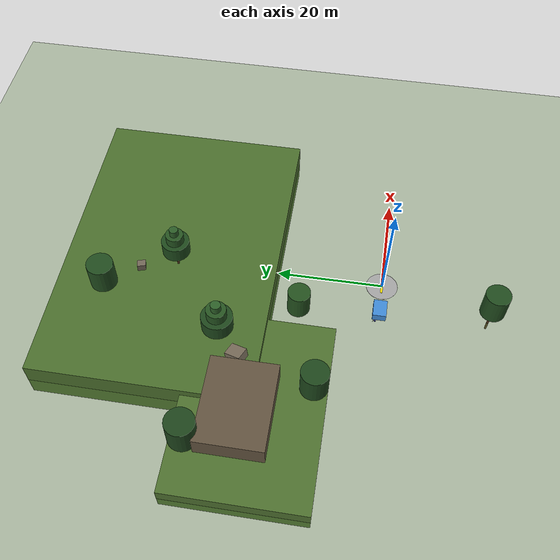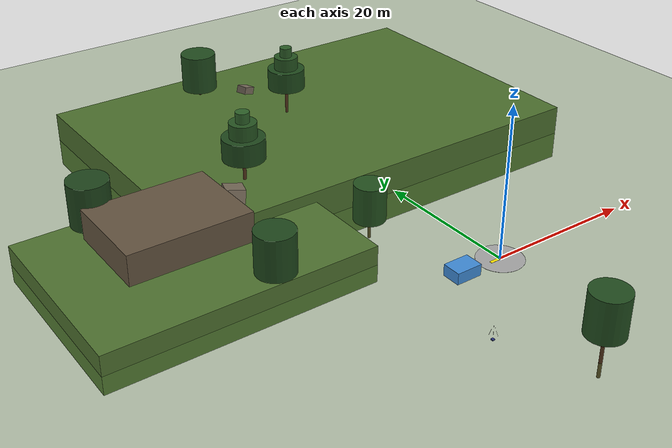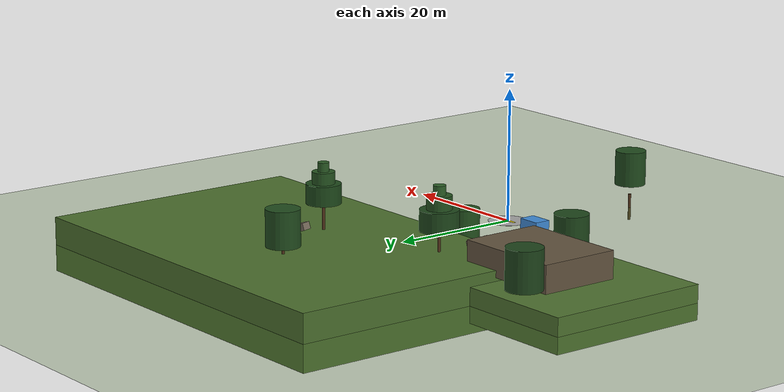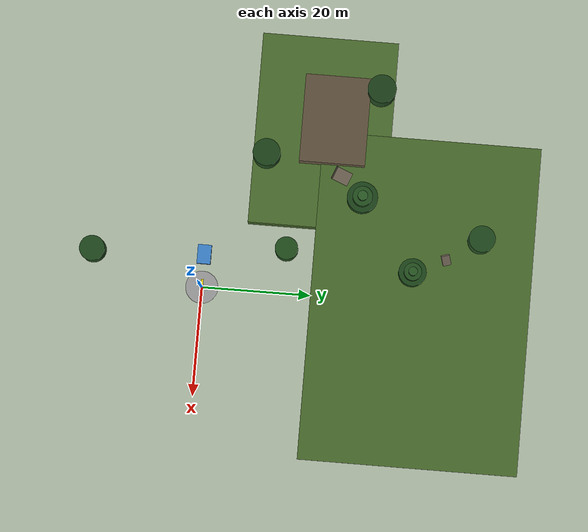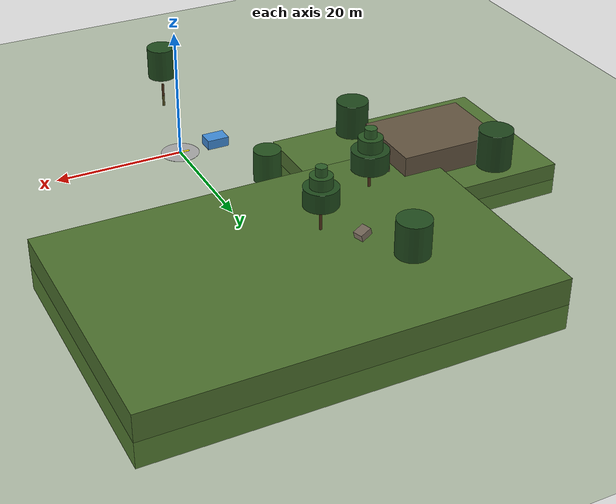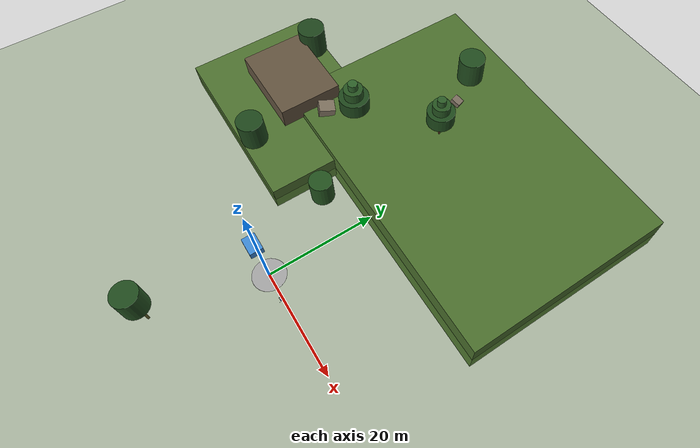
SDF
<sdf version="1.9">
 <world name="sar_hilly_terrain">
  <model name="ground_plane">
   <static>true</static>
   <link name="link">
    <collision name="col">
     <geometry><plane><normal>0 0 1</normal><size>500 500</size></plane></geometry>
    </collision>
    <visual name="vis">
     <geometry><plane><normal>0 0 1</normal><size>500 500</size></plane></geometry>
     <material>
      <ambient>0.28 0.42 0.18 1</ambient>
      <diffuse>0.32 0.48 0.20 1</diffuse>
      <specular>0.05 0.07 0.03 1</specular>
     </material>
    </visual>
   </link>
  </model>
  <model name="hill_1">
   <static>true</static>
   <pose>0 40 0 0 0 0</pose>
   <link name="link">
    <collision name="col"><geometry><box><size>60 40 8</size></box></geometry></collision>
    <visual name="vis">
     <geometry><box><size>60 40 8</size></box></geometry>
     <material><ambient>0.26 0.38 0.16 1</ambient><diffuse>0.30 0.44 0.18 1</diffuse></material>
    </visual>
   </link>
  </model>
  <model name="hill_3">
   <static>true</static>
   <pose>-30 20 0 0 0 0</pose>
   <link name="link">
    <collision name="col"><geometry><box><size>35 25 5</size></box></geometry></collision>
    <visual name="vis">
     <geometry><box><size>35 25 5</size></box></geometry>
     <material><ambient>0.27 0.39 0.17 1</ambient><diffuse>0.31 0.45 0.19 1</diffuse></material>
    </visual>
   </link>
  </model>
  <model name="hill_3_peak">
   <static>true</static>
   <pose>-32 22 5 0 0 0</pose>
   <link name="link">
    <collision name="col"><geometry><box><size>16 12 4</size></box></geometry></collision>
    <visual name="vis">
     <geometry><box><size>16 12 4</size></box></geometry>
     <material><ambient>0.35 0.29 0.21 1</ambient><diffuse>0.39 0.33 0.25 1</diffuse></material>
    </visual>
   </link>
  </model>
  <model name="tree_02">
   <static>true</static>
   <pose>-5 38 8 0 0 0</pose>
   <link name="trunk">
    <visual name="v">
     <geometry><cylinder><radius>0.20</radius><length>4.0</length></cylinder></geometry>
     <material><ambient>0.28 0.18 0.08 1</ambient><diffuse>0.32 0.20 0.10 1</diffuse></material>
    </visual>
    <collision name="c">
     <geometry><cylinder><radius>0.20</radius><length>4.0</length></cylinder></geometry>
    </collision>
   </link>
  </model>
  <model name="tree_02_c1">
   <static>true</static>
   <pose>-5 38 11.2 0 0 0</pose>
   <link name="l">
    <visual name="v">
     <geometry><cylinder><radius>2.5</radius><length>2.8</length></cylinder></geometry>
     <material><ambient>0.10 0.25 0.09 1</ambient><diffuse>0.12 0.29 0.11 1</diffuse></material>
    </visual>
   </link>
  </model>
  <model name="tree_02_c2">
   <static>true</static>
   <pose>-5 38 13.2 0 0 0</pose>
   <link name="l">
    <visual name="v">
     <geometry><cylinder><radius>1.6</radius><length>2.2</length></cylinder></geometry>
     <material><ambient>0.13 0.29 0.11 1</ambient><diffuse>0.15 0.33 0.13 1</diffuse></material>
    </visual>
   </link>
  </model>
  <model name="tree_02_c3">
   <static>true</static>
   <pose>-5 38 14.8 0 0 0</pose>
   <link name="l">
    <visual name="v">
     <geometry><cylinder><radius>0.8</radius><length>1.6</length></cylinder></geometry>
     <material><ambient>0.15 0.31 0.13 1</ambient><diffuse>0.17 0.36 0.15 1</diffuse></material>
    </visual>
   </link>
  </model>
  <model name="tree_04">
   <static>true</static>
   <pose>-18 28 5 0 0 0</pose>
   <link name="trunk">
    <visual name="v">
     <geometry><cylinder><radius>0.22</radius><length>4.5</length></cylinder></geometry>
     <material><ambient>0.28 0.18 0.08 1</ambient><diffuse>0.32 0.20 0.10 1</diffuse></material>
    </visual>
    <collision name="c">
     <geometry><cylinder><radius>0.22</radius><length>4.5</length></cylinder></geometry>
    </collision>
   </link>
  </model>
  <model name="tree_04_c1">
   <static>true</static>
   <pose>-18 28 8.5 0 0 0</pose>
   <link name="l">
    <visual name="v">
     <geometry><cylinder><radius>2.8</radius><length>3.0</length></cylinder></geometry>
     <material><ambient>0.10 0.24 0.09 1</ambient><diffuse>0.12 0.28 0.11 1</diffuse></material>
    </visual>
   </link>
  </model>
  <model name="tree_04_c2">
   <static>true</static>
   <pose>-18 28 10.8 0 0 0</pose>
   <link name="l">
    <visual name="v">
     <geometry><cylinder><radius>1.8</radius><length>2.4</length></cylinder></geometry>
     <material><ambient>0.13 0.28 0.11 1</ambient><diffuse>0.15 0.33 0.13 1</diffuse></material>
    </visual>
   </link>
  </model>
  <model name="tree_04_c3">
   <static>true</static>
   <pose>-18 28 12.5 0 0 0</pose>
   <link name="l">
    <visual name="v">
     <geometry><cylinder><radius>0.9</radius><length>1.8</length></cylinder></geometry>
     <material><ambient>0.16 0.32 0.14 1</ambient><diffuse>0.18 0.38 0.16 1</diffuse></material>
    </visual>
   </link>
  </model>
  <model name="tree_06">
   <static>true</static>
   <pose>-8 15 0 0 0 0</pose>
   <link name="trunk">
    <visual name="v">
     <geometry><cylinder><radius>0.18</radius><length>3.5</length></cylinder></geometry>
     <material><ambient>0.28 0.18 0.08 1</ambient><diffuse>0.32 0.20 0.10 1</diffuse></material>
    </visual>
   </link>
  </model>
  <model name="tree_06_can">
   <static>true</static>
   <pose>-8 15 3.5 0 0 0</pose>
   <link name="l">
    <visual name="v">
     <geometry><cylinder><radius>2.1</radius><length>5.0</length></cylinder></geometry>
     <material><ambient>0.12 0.27 0.10 1</ambient><diffuse>0.14 0.32 0.12 1</diffuse></material>
    </visual>
   </link>
  </model>
  <model name="tree_08">
   <static>true</static>
   <pose>-25 10 0 0 0 0</pose>
   <link name="trunk">
    <visual name="v">
     <geometry><cylinder><radius>0.21</radius><length>4.0</length></cylinder></geometry>
     <material><ambient>0.28 0.18 0.08 1</ambient><diffuse>0.32 0.20 0.10 1</diffuse></material>
    </visual>
   </link>
  </model>
  <model name="tree_08_can">
   <static>true</static>
   <pose>-25 10 5.2 0 0 0</pose>
   <link name="l">
    <visual name="v">
     <geometry><cylinder><radius>2.5</radius><length>5.5</length></cylinder></geometry>
     <material><ambient>0.10 0.24 0.09 1</ambient><diffuse>0.12 0.28 0.11 1</diffuse></material>
    </visual>
   </link>
  </model>
  <model name="tree_10">
   <static>true</static>
   <pose>-12 50 8 0 0 0</pose>
   <link name="trunk">
    <visual name="v">
     <geometry><cylinder><radius>0.20</radius><length>3.8</length></cylinder></geometry>
     <material><ambient>0.28 0.18 0.08 1</ambient><diffuse>0.32 0.20 0.10 1</diffuse></material>
    </visual>
   </link>
  </model>
  <model name="tree_10_can">
   <static>true</static>
   <pose>-12 50 9.8 0 0 0</pose>
   <link name="l">
    <visual name="v">
     <geometry><cylinder><radius>2.4</radius><length>5.2</length></cylinder></geometry>
     <material><ambient>0.11 0.26 0.10 1</ambient><diffuse>0.13 0.30 0.12 1</diffuse></material>
    </visual>
   </link>
  </model>
  <model name="tree_12">
   <static>true</static>
   <pose>-38 30 0 0 0 0</pose>
   <link name="t">
    <visual name="v">
     <geometry><cylinder><radius>0.22</radius><length>4.2</length></cylinder></geometry>
     <material><ambient>0.28 0.18 0.08 1</ambient><diffuse>0.32 0.20 0.10 1</diffuse></material>
    </visual>
   </link>
  </model>
  <model name="tree_12_can">
   <static>true</static>
   <pose>-38 30 6.5 0 0 0</pose>
   <link name="l">
    <visual name="v">
     <geometry><cylinder><radius>2.6</radius><length>5.8</length></cylinder></geometry>
     <material><ambient>0.10 0.23 0.09 1</ambient><diffuse>0.12 0.27 0.11 1</diffuse></material>
    </visual>
   </link>
  </model>
  <model name="tree_14">
   <static>true</static>
   <pose>-5 -20 0 0 0 0</pose>
   <link name="t">
    <visual name="v">
     <geometry><cylinder><radius>0.20</radius><length>4.0</length></cylinder></geometry>
     <material><ambient>0.28 0.18 0.08 1</ambient><diffuse>0.32 0.20 0.10 1</diffuse></material>
    </visual>
   </link>
  </model>
  <model name="tree_14_can">
   <static>true</static>
   <pose>-5 -20 6.2 0 0 0</pose>
   <link name="l">
    <visual name="v">
     <geometry><cylinder><radius>2.3</radius><length>5.2</length></cylinder></geometry>
     <material><ambient>0.11 0.26 0.10 1</ambient><diffuse>0.13 0.30 0.12 1</diffuse></material>
    </visual>
   </link>
  </model>
  <model name="rock_2">
   <static>true</static>
   <pose>-22 24 5 0.1 0.2 1.2</pose>
   <link name="l">
    <visual name="v">
     <geometry><box><size>3.0 2.5 1.8</size></box></geometry>
     <material><ambient>0.42 0.38 0.32 1</ambient><diffuse>0.48 0.43 0.36 1</diffuse></material>
    </visual>
    <collision name="c"><geometry><box><size>3.0 2.5 1.8</size></box></geometry></collision>
   </link>
  </model>
  <model name="rock_4">
   <static>true</static>
   <pose>-8 44 8 0.0 0.3 0.3</pose>
   <link name="l">
    <visual name="v">
     <geometry><box><size>1.8 1.5 1.0</size></box></geometry>
     <material><ambient>0.43 0.38 0.33 1</ambient><diffuse>0.47 0.42 0.36 1</diffuse></material>
    </visual>
    <collision name="c"><geometry><box><size>1.8 1.5 1.0</size></box></geometry></collision>
   </link>
  </model>
  <model name="survivor_3_body">
   <static>true</static>
   <pose>-28 22 5.45 0 0 0</pose>
   <link name="link">
    <visual name="torso">
     <geometry><cylinder><radius>0.22</radius><length>0.9</length></cylinder></geometry>
     <material><ambient>1.0 0.35 0.0 1</ambient><diffuse>1.0 0.40 0.0 1</diffuse></material>
    </visual>
    <collision name="c">
     <geometry><cylinder><radius>0.22</radius><length>0.9</length></cylinder></geometry>
    </collision>
   </link>
  </model>
  <model name="survivor_3_tarp">
   <static>true</static>
   <pose>-27.5 21 5.02 0 0 0.5</pose>
   <link name="link">
    <visual name="vis">
     <geometry><box><size>2.0 1.2 0.04</size></box></geometry>
     <material><ambient>1.0 0.20 0.0 1</ambient><diffuse>1.0 0.25 0.0 1</diffuse></material>
    </visual>
   </link>
  </model>
  <model name="survivor_3_signal">
   <static>true</static>
   <pose>-30 23 5.01 0 0 0.2</pose>
   <link name="link">
    <visual name="vis">
     <geometry><box><size>2.5 0.8 0.02</size></box></geometry>
     <material><ambient>1.0 1.0 0.0 1</ambient><diffuse>1.0 1.0 0.0 1</diffuse></material>
    </visual>
   </link>
  </model>
  <model name="base_camp_pad">
   <static>true</static>
   <pose>0 0 0.01 0 0 0</pose>
   <link name="link">
    <visual name="vis">
     <geometry><cylinder><radius>3.0</radius><length>0.02</length></cylinder></geometry>
     <material><ambient>0.6 0.6 0.6 1</ambient><diffuse>0.65 0.65 0.65 1</diffuse></material>
    </visual>
   </link>
  </model>
  <model name="base_camp_H">
   <static>true</static>
   <pose>0 0 0.03 0 0 0</pose>
   <link name="link">
    <visual name="vis">
     <geometry><box><size>3.0 0.4 0.02</size></box></geometry>
     <material><ambient>1.0 0.9 0.0 1</ambient><diffuse>1.0 0.9 0.0 1</diffuse></material>
    </visual>
   </link>
  </model>
  <model name="base_camp_tent">
   <static>true</static>
   <pose>-6 0 0.75 0 0 0</pose>
   <link name="link">
    <visual name="vis">
     <geometry><box><size>3.5 2.5 1.5</size></box></geometry>
     <material><ambient>0.2 0.5 0.8 1</ambient><diffuse>0.25 0.55 0.85 1</diffuse></material>
    </visual>
    <collision name="c"><geometry><box><size>3.5 2.5 1.5</size></box></geometry></collision>
   </link>
  </model>
  <model name="parachute">
   <pose>0 0 -10 0 0 0</pose>
   <static>false</static>
   <link name="canopy">
    <inertial>
     <mass>0.15</mass>
     <inertia><ixx>0.03</ixx><iyy>0.03</iyy><izz>0.03</izz><ixy>0</ixy><ixz>0</ixz><iyz>0</iyz></inertia>
    </inertial>
    <visual name="dome">
     <geometry><sphere><radius>1.1</radius></sphere></geometry>
     <material><ambient>1.0 0.38 0.0 0.85</ambient><diffuse>1.0 0.38 0.0 0.85</diffuse></material>
    </visual>
    <collision name="dome_col"><geometry><sphere><radius>1.1</radius></sphere></geometry></collision>
    <visual name="stripe_1">
     <pose>0.5 0 -0.3 0 0.4 0</pose>
     <geometry><cylinder><radius>0.12</radius><length>1.8</length></cylinder></geometry>
     <material><ambient>1.0 1.0 1.0 0.7</ambient><diffuse>1.0 1.0 1.0 0.7</diffuse></material>
    </visual>
    <visual name="stripe_2">
     <pose>-0.5 0 -0.3 0 -0.4 0</pose>
     <geometry><cylinder><radius>0.12</radius><length>1.8</length></cylinder></geometry>
     <material><ambient>1.0 1.0 1.0 0.7</ambient><diffuse>1.0 1.0 1.0 0.7</diffuse></material>
    </visual>
    <visual name="stripe_3">
     <pose>0 0.5 -0.3 0.4 0 0</pose>
     <geometry><cylinder><radius>0.12</radius><length>1.8</length></cylinder></geometry>
     <material><ambient>1.0 1.0 1.0 0.7</ambient><diffuse>1.0 1.0 1.0 0.7</diffuse></material>
    </visual>
    <visual name="line_1">
     <pose>0.30 0.30 -0.85 0 0.32 0.785</pose>
     <geometry><cylinder><radius>0.007</radius><length>1.7</length></cylinder></geometry>
     <material><ambient>0.9 0.9 0.9 1</ambient><diffuse>0.9 0.9 0.9 1</diffuse></material>
    </visual>
    <visual name="line_2">
     <pose>-0.30 0.30 -0.85 0 -0.32 2.356</pose>
     <geometry><cylinder><radius>0.007</radius><length>1.7</length></cylinder></geometry>
     <material><ambient>0.9 0.9 0.9 1</ambient><diffuse>0.9 0.9 0.9 1</diffuse></material>
    </visual>
    <visual name="line_3">
     <pose>-0.30 -0.30 -0.85 0 0.32 3.927</pose>
     <geometry><cylinder><radius>0.007</radius><length>1.7</length></cylinder></geometry>
     <material><ambient>0.9 0.9 0.9 1</ambient><diffuse>0.9 0.9 0.9 1</diffuse></material>
    </visual>
    <visual name="line_4">
     <pose>0.30 -0.30 -0.85 0 -0.32 5.498</pose>
     <geometry><cylinder><radius>0.007</radius><length>1.7</length></cylinder></geometry>
     <material><ambient>0.9 0.9 0.9 1</ambient><diffuse>0.9 0.9 0.9 1</diffuse></material>
    </visual>
    <visual name="payload">
     <pose>0 0 -1.9 0 0 0</pose>
     <geometry><box><size>0.38 0.38 0.16</size></box></geometry>
     <material><ambient>0.15 0.15 0.7 1</ambient><diffuse>0.15 0.15 0.7 1</diffuse></material>
    </visual>
   </link>
  </model>
 </world>
</sdf>
